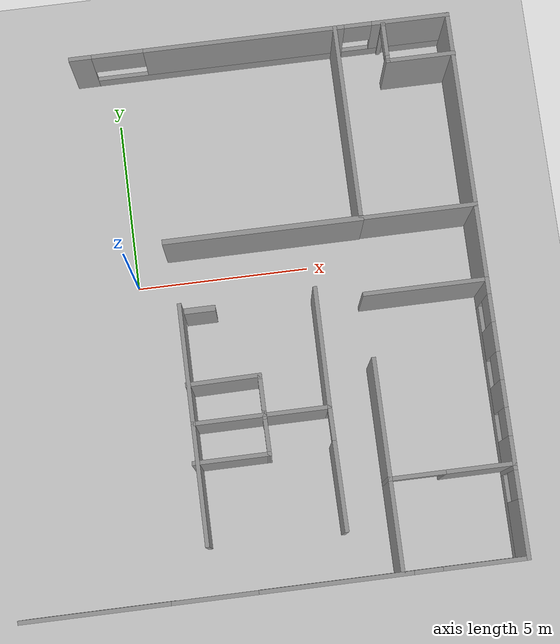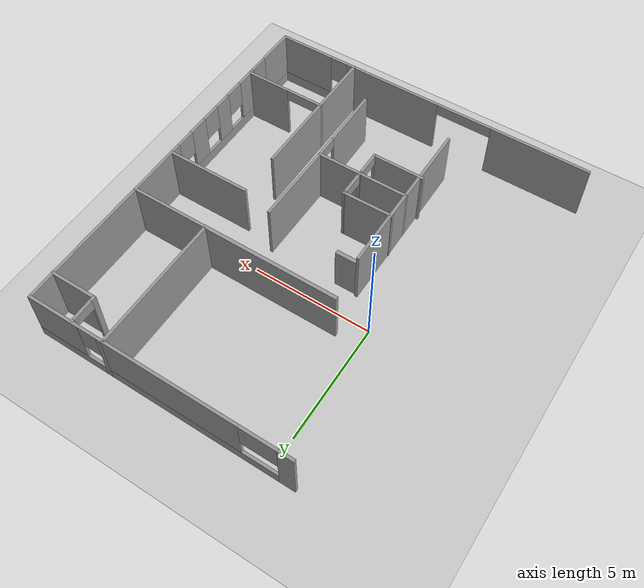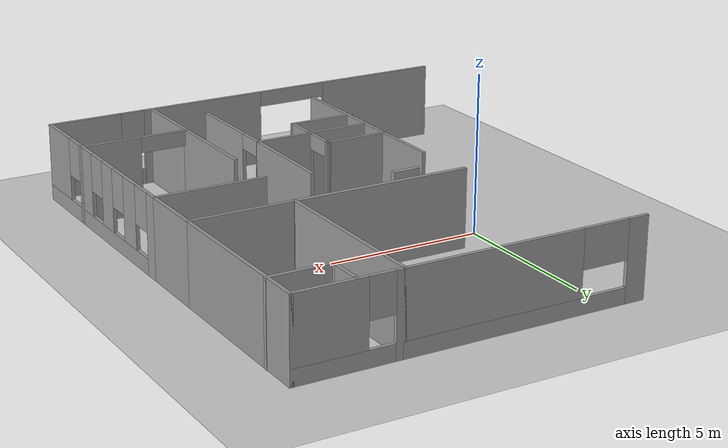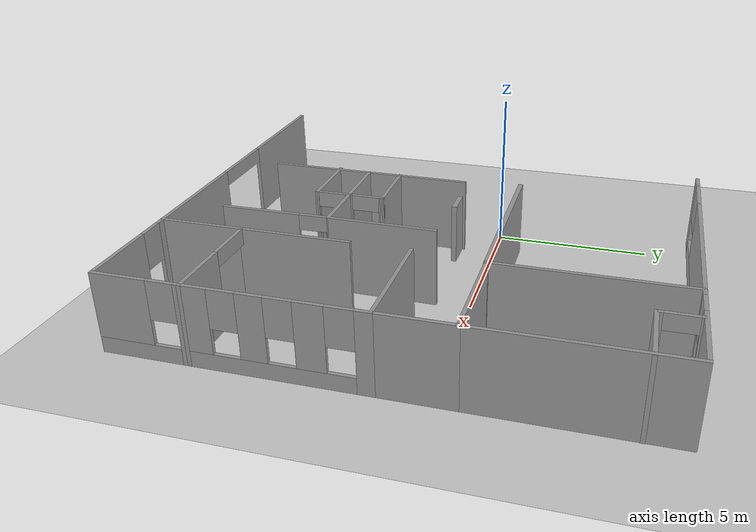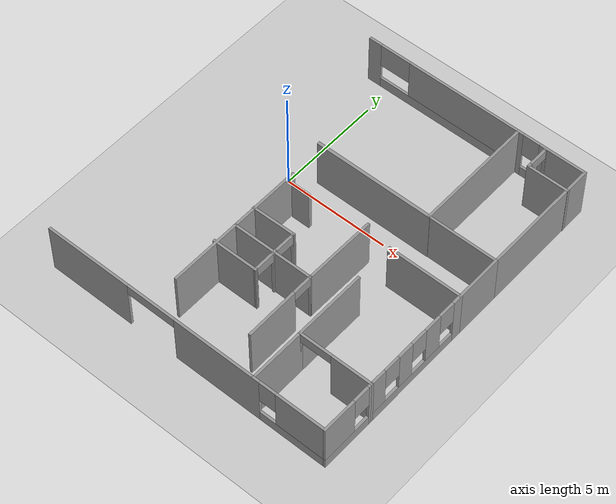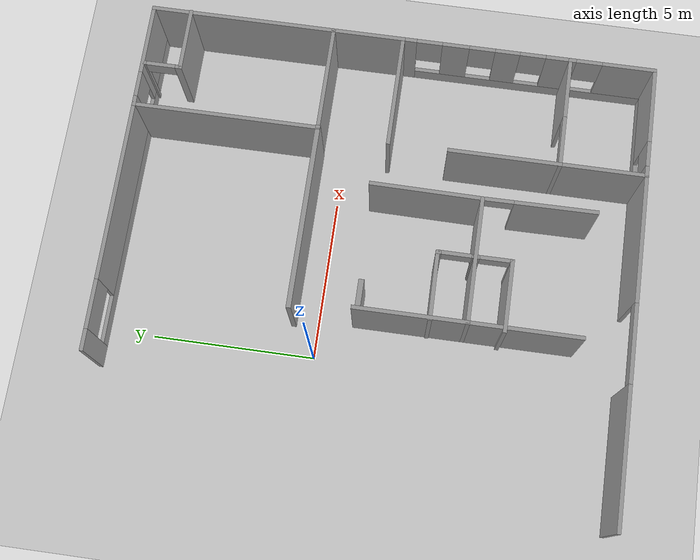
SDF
<sdf version="1.6">
 <world name="default">
  <model name="ground_plane">
   <static>1</static>
   <link name="link">
    <collision name="collision">
     <geometry><plane><normal>0 0 1</normal><size>100 100</size></plane></geometry>
     <surface><friction><ode><mu>100</mu><mu2>50</mu2></ode></friction></surface>
    </collision>
    <visual name="visual">
     <cast_shadows>0</cast_shadows>
     <geometry><plane><normal>0 0 1</normal><size>100 100</size></plane></geometry>
     <material>
      <script><uri>file://media/materials/scripts/gazebo.material</uri><name>Gazebo/Grey</name></script>
     </material>
    </visual>
   </link>
  </model>
  <model name="resthome">
   <pose>1.14114 -1.394 0 0 -0 0</pose>
   <link name="Door_12">
    <collision name="Door_12_Collision">
     <geometry><box><size>0.9 0.17 2</size></box></geometry>
     <pose>0 0 1 0 -0 0</pose>
    </collision>
    <visual name="Door_12_Visual">
     <pose>0 0 1 0 -0 0</pose>
     <geometry><box><size>0.9 0.17 2</size></box></geometry>
     <material>
      <script><uri>file://media/materials/scripts/gazebo.material</uri><name>Gazebo/Grey</name></script>
     </material>
    </visual>
    <pose>0.606126 0.200014 0 0 -0 0</pose>
   </link>
   <link name="Wall_100">
    <collision name="Wall_100_Collision">
     <geometry><box><size>3.46958 0.12 2.5</size></box></geometry>
     <pose>0 0 1.25 0 -0 0</pose>
    </collision>
    <visual name="Wall_100_Visual">
     <pose>0 0 1.25 0 -0 0</pose>
     <geometry><box><size>3.46958 0.12 2.5</size></box></geometry>
     <material>
      <script><uri>file://media/materials/scripts/gazebo.material</uri><name>Gazebo/Grey</name></script>
      <ambient>1 1 1 1</ambient>
     </material>
    </visual>
    <pose>0.064862 -1.375 0 0 -0 1.5708</pose>
   </link>
   <link name="Wall_104">
    <collision name="Wall_104_Collision">
     <geometry><box><size>3.47 0.12 2.5</size></box></geometry>
     <pose>0 0 1.25 0 -0 0</pose>
    </collision>
    <visual name="Wall_104_Visual">
     <pose>0 0 1.25 0 -0 0</pose>
     <geometry><box><size>3.47 0.12 2.5</size></box></geometry>
     <material>
      <script><uri>file://media/materials/scripts/gazebo.material</uri><name>Gazebo/Grey</name></script>
      <ambient>1 1 1 1</ambient>
     </material>
    </visual>
    <pose>0.064862 -4.725 0 0 0 -1.5708</pose>
   </link>
   <link name="Wall_106">
    <pose>3.89486 -4.76 0 0 0 -1.56202</pose>
    <visual name="Wall_106_Visual_0">
     <pose>-1.71993 0 1.25 0 -0 0</pose>
     <geometry><box><size>0.100265 0.12 2.5</size></box></geometry>
     <material>
      <script><uri>file://media/materials/scripts/gazebo.material</uri><name>Gazebo/Grey</name></script>
      <ambient>1 1 1 1</ambient>
     </material>
    </visual>
    <collision name="Wall_106_Collision_0">
     <geometry><box><size>0.100265 0.12 2.5</size></box></geometry>
     <pose>-1.71993 0 1.25 0 -0 0</pose>
    </collision>
    <visual name="Wall_106_Visual_1">
     <pose>0.500132 0 1.25 0 -0 0</pose>
     <geometry><box><size>2.53987 0.12 2.5</size></box></geometry>
     <material>
      <script><uri>file://media/materials/scripts/gazebo.material</uri><name>Gazebo/Grey</name></script>
      <ambient>1 1 1 1</ambient>
     </material>
    </visual>
    <collision name="Wall_106_Collision_1">
     <geometry><box><size>2.53987 0.12 2.5</size></box></geometry>
     <pose>0.500132 0 1.25 0 -0 0</pose>
    </collision>
    <visual name="Wall_106_Visual_2">
     <pose>-1.2198 0 2.25 0 -0 0</pose>
     <geometry><box><size>0.9 0.12 0.5</size></box></geometry>
     <material>
      <script><uri>file://media/materials/scripts/gazebo.material</uri><name>Gazebo/Grey</name></script>
      <ambient>1 1 1 1</ambient>
     </material>
    </visual>
    <collision name="Wall_106_Collision_2">
     <geometry><box><size>0.9 0.12 0.5</size></box></geometry>
     <pose>-1.2198 0 2.25 0 -0 0</pose>
    </collision>
   </link>
   <link name="Wall_149">
    <collision name="Wall_149_Collision">
     <geometry><box><size>2.02096 0.12 2.5</size></box></geometry>
     <pose>0 0 1.25 0 -0 0</pose>
    </collision>
    <visual name="Wall_149_Visual">
     <pose>0 0 1.25 0 -0 0</pose>
     <geometry><box><size>2.02096 0.12 2.5</size></box></geometry>
     <material>
      <script><uri>file://media/materials/scripts/gazebo.material</uri><name>Gazebo/Grey</name></script>
      <ambient>1 1 1 1</ambient>
     </material>
    </visual>
    <pose>7.80636 6.668 0 0 -0 3.14159</pose>
   </link>
   <link name="Wall_151">
    <pose>6.85586 7.218 0 0 -0 1.5708</pose>
    <visual name="Wall_151_Visual_0">
     <pose>-0.501734 0 1.25 0 -0 0</pose>
     <geometry><box><size>0.216362 0.12 2.5</size></box></geometry>
     <material>
      <script><uri>file://media/materials/scripts/gazebo.material</uri><name>Gazebo/Grey</name></script>
      <ambient>1 1 1 1</ambient>
     </material>
    </visual>
    <collision name="Wall_151_Collision_0">
     <geometry><box><size>0.216362 0.12 2.5</size></box></geometry>
     <pose>-0.501734 0 1.25 0 -0 0</pose>
    </collision>
    <visual name="Wall_151_Visual_1">
     <pose>0.558181 0 1.25 0 -0 0</pose>
     <geometry><box><size>0.103468 0.12 2.5</size></box></geometry>
     <material>
      <script><uri>file://media/materials/scripts/gazebo.material</uri><name>Gazebo/Grey</name></script>
      <ambient>1 1 1 1</ambient>
     </material>
    </visual>
    <collision name="Wall_151_Collision_1">
     <geometry><box><size>0.103468 0.12 2.5</size></box></geometry>
     <pose>0.558181 0 1.25 0 -0 0</pose>
    </collision>
    <visual name="Wall_151_Visual_2">
     <pose>0.056447 0 2.25 0 -0 0</pose>
     <geometry><box><size>0.9 0.12 0.5</size></box></geometry>
     <material>
      <script><uri>file://media/materials/scripts/gazebo.material</uri><name>Gazebo/Grey</name></script>
      <ambient>1 1 1 1</ambient>
     </material>
    </visual>
    <collision name="Wall_151_Collision_2">
     <geometry><box><size>0.9 0.12 0.5</size></box></geometry>
     <pose>0.056447 0 2.25 0 -0 0</pose>
    </collision>
   </link>
   <link name="Wall_159">
    <collision name="Wall_159_Collision">
     <geometry><box><size>2.14358 0.12 2.5</size></box></geometry>
     <pose>0 0 1.25 0 -0 0</pose>
    </collision>
    <visual name="Wall_159_Visual">
     <pose>0 0 1.25 0 -0 0</pose>
     <geometry><box><size>2.14358 0.12 2.5</size></box></geometry>
     <material>
      <script><uri>file://media/materials/scripts/gazebo.material</uri><name>Gazebo/Grey</name></script>
      <ambient>1 1 1 1</ambient>
     </material>
    </visual>
    <pose>1.04814 -1.9405 0 0 -0 0.011366</pose>
   </link>
   <link name="Wall_161">
    <pose>2.05986 -2.479 0 0 0 -1.5708</pose>
    <visual name="Wall_161_Visual_0">
     <pose>-0.52744 0 1.25 0 -0 0</pose>
     <geometry><box><size>0.164636 0.12 2.5</size></box></geometry>
     <material>
      <script><uri>file://media/materials/scripts/gazebo.material</uri><name>Gazebo/Grey</name></script>
      <ambient>1 1 1 1</ambient>
     </material>
    </visual>
    <collision name="Wall_161_Collision_0">
     <geometry><box><size>0.164636 0.12 2.5</size></box></geometry>
     <pose>-0.52744 0 1.25 0 -0 0</pose>
    </collision>
    <visual name="Wall_161_Visual_1">
     <pose>0.532318 0 1.25 0 -0 0</pose>
     <geometry><box><size>0.154879 0.12 2.5</size></box></geometry>
     <material>
      <script><uri>file://media/materials/scripts/gazebo.material</uri><name>Gazebo/Grey</name></script>
      <ambient>1 1 1 1</ambient>
     </material>
    </visual>
    <collision name="Wall_161_Collision_1">
     <geometry><box><size>0.154879 0.12 2.5</size></box></geometry>
     <pose>0.532318 0 1.25 0 -0 0</pose>
    </collision>
    <visual name="Wall_161_Visual_2">
     <pose>0.004878 0 2.25 0 -0 0</pose>
     <geometry><box><size>0.9 0.12 0.5</size></box></geometry>
     <material>
      <script><uri>file://media/materials/scripts/gazebo.material</uri><name>Gazebo/Grey</name></script>
      <ambient>1 1 1 1</ambient>
     </material>
    </visual>
    <collision name="Wall_161_Collision_2">
     <geometry><box><size>0.9 0.12 0.5</size></box></geometry>
     <pose>0.004878 0 2.25 0 -0 0</pose>
    </collision>
   </link>
   <link name="Wall_167">
    <collision name="Wall_167_Collision">
     <geometry><box><size>2.22 0.12 2.5</size></box></geometry>
     <pose>0 0 1.25 0 -0 0</pose>
    </collision>
    <visual name="Wall_167_Visual">
     <pose>0 0 1.25 0 -0 0</pose>
     <geometry><box><size>2.22 0.12 2.5</size></box></geometry>
     <material>
      <script><uri>file://media/materials/scripts/gazebo.material</uri><name>Gazebo/Grey</name></script>
      <ambient>1 1 1 1</ambient>
     </material>
    </visual>
    <pose>1.01586 -4.138 0 0 -0 0</pose>
   </link>
   <link name="Wall_170">
    <pose>2.06286 -3.5835 0 0 -0 1.57621</pose>
    <visual name="Wall_170_Visual_0">
     <pose>-0.5505 0 1.25 0 -0 0</pose>
     <geometry><box><size>0.128017 0.12 2.5</size></box></geometry>
     <material>
      <script><uri>file://media/materials/scripts/gazebo.material</uri><name>Gazebo/Grey</name></script>
      <ambient>1 1 1 1</ambient>
     </material>
    </visual>
    <collision name="Wall_170_Collision_0">
     <geometry><box><size>0.128017 0.12 2.5</size></box></geometry>
     <pose>-0.5505 0 1.25 0 -0 0</pose>
    </collision>
    <visual name="Wall_170_Visual_1">
     <pose>0.514009 0 1.25 0 -0 0</pose>
     <geometry><box><size>0.200999 0.12 2.5</size></box></geometry>
     <material>
      <script><uri>file://media/materials/scripts/gazebo.material</uri><name>Gazebo/Grey</name></script>
      <ambient>1 1 1 1</ambient>
     </material>
    </visual>
    <collision name="Wall_170_Collision_1">
     <geometry><box><size>0.200999 0.12 2.5</size></box></geometry>
     <pose>0.514009 0 1.25 0 -0 0</pose>
    </collision>
    <visual name="Wall_170_Visual_2">
     <pose>-0.036491 0 2.25 0 -0 0</pose>
     <geometry><box><size>0.9 0.12 0.5</size></box></geometry>
     <material>
      <script><uri>file://media/materials/scripts/gazebo.material</uri><name>Gazebo/Grey</name></script>
      <ambient>1 1 1 1</ambient>
     </material>
    </visual>
    <collision name="Wall_170_Collision_2">
     <geometry><box><size>0.9 0.12 0.5</size></box></geometry>
     <pose>-0.036491 0 2.25 0 -0 0</pose>
    </collision>
   </link>
   <link name="Wall_173">
    <collision name="Wall_173_Collision">
     <geometry><box><size>3.47 0.12 2.5</size></box></geometry>
     <pose>0 0 1.25 0 -0 0</pose>
    </collision>
    <visual name="Wall_173_Visual">
     <pose>0 0 1.25 0 -0 0</pose>
     <geometry><box><size>3.47 0.12 2.5</size></box></geometry>
     <material>
      <script><uri>file://media/materials/scripts/gazebo.material</uri><name>Gazebo/Grey</name></script>
      <ambient>1 1 1 1</ambient>
     </material>
    </visual>
    <pose>5.27686 -3.561 0 0 -0 1.5708</pose>
   </link>
   <link name="Wall_175">
    <collision name="Wall_175_Collision">
     <geometry><box><size>5.75 0.15 2.5</size></box></geometry>
     <pose>0 0 1.25 0 -0 0</pose>
    </collision>
    <visual name="Wall_175_Visual">
     <pose>0 0 1.25 0 -0 0</pose>
     <geometry><box><size>5.75 0.15 2.5</size></box></geometry>
     <material>
      <script><uri>file://media/materials/scripts/gazebo.material</uri><name>Gazebo/Grey</name></script>
      <ambient>1 1 1 1</ambient>
     </material>
    </visual>
    <pose>2.65986 2.159 0 0 -0 3.14159</pose>
   </link>
   <link name="Wall_47">
    <pose>1.61986 7.839 0 0 -0 0</pose>
    <visual name="Wall_47_Visual_0">
     <pose>-3.5722 0 1.25 0 -0 0</pose>
     <geometry><box><size>0.655594 0.12 2.5</size></box></geometry>
     <material>
      <script><uri>file://media/materials/scripts/gazebo.material</uri><name>Gazebo/Grey</name></script>
      <ambient>1 1 1 1</ambient>
     </material>
    </visual>
    <collision name="Wall_47_Collision_0">
     <geometry><box><size>0.655594 0.12 2.5</size></box></geometry>
     <pose>-3.5722 0 1.25 0 -0 0</pose>
    </collision>
    <visual name="Wall_47_Visual_1">
     <pose>0.327797 0 0.25 0 -0 0</pose>
     <geometry><box><size>7.14441 0.12 0.5</size></box></geometry>
     <material>
      <script><uri>file://media/materials/scripts/gazebo.material</uri><name>Gazebo/Grey</name></script>
      <ambient>1 1 1 1</ambient>
     </material>
    </visual>
    <collision name="Wall_47_Collision_1">
     <geometry><box><size>7.14441 0.12 0.5</size></box></geometry>
     <pose>0.327797 0 0.25 0 -0 0</pose>
    </collision>
    <visual name="Wall_47_Visual_2">
     <pose>1.0778 0 1.5 0 -0 0</pose>
     <geometry><box><size>5.64441 0.12 2</size></box></geometry>
     <material>
      <script><uri>file://media/materials/scripts/gazebo.material</uri><name>Gazebo/Grey</name></script>
      <ambient>1 1 1 1</ambient>
     </material>
    </visual>
    <collision name="Wall_47_Collision_2">
     <geometry><box><size>5.64441 0.12 2</size></box></geometry>
     <pose>1.0778 0 1.5 0 -0 0</pose>
    </collision>
    <visual name="Wall_47_Visual_3">
     <pose>-2.49441 0 1.9 0 -0 0</pose>
     <geometry><box><size>1.5 0.12 1.2</size></box></geometry>
     <material>
      <script><uri>file://media/materials/scripts/gazebo.material</uri><name>Gazebo/Grey</name></script>
      <ambient>1 1 1 1</ambient>
     </material>
    </visual>
    <collision name="Wall_47_Collision_3">
     <geometry><box><size>1.5 0.12 1.2</size></box></geometry>
     <pose>-2.49441 0 1.9 0 -0 0</pose>
    </collision>
   </link>
   <link name="Wall_49">
    <collision name="Wall_49_Collision">
     <geometry><box><size>5.8 0.12 2.5</size></box></geometry>
     <pose>0 0 1.25 0 -0 0</pose>
    </collision>
    <visual name="Wall_49_Visual">
     <pose>0 0 1.25 0 -0 0</pose>
     <geometry><box><size>5.8 0.12 2.5</size></box></geometry>
     <material>
      <script><uri>file://media/materials/scripts/gazebo.material</uri><name>Gazebo/Grey</name></script>
      <ambient>1 1 1 1</ambient>
     </material>
    </visual>
    <pose>5.45986 4.999 0 0 0 -1.5708</pose>
   </link>
   <link name="Wall_53">
    <pose>7.09986 7.839 0 0 -0 0</pose>
    <visual name="Wall_53_Visual_0">
     <pose>-1.53348 0 1.25 0 -0 0</pose>
     <geometry><box><size>0.333034 0.12 2.5</size></box></geometry>
     <material>
      <script><uri>file://media/materials/scripts/gazebo.material</uri><name>Gazebo/Grey</name></script>
      <ambient>1 1 1 1</ambient>
     </material>
    </visual>
    <collision name="Wall_53_Collision_0">
     <geometry><box><size>0.333034 0.12 2.5</size></box></geometry>
     <pose>-1.53348 0 1.25 0 -0 0</pose>
    </collision>
    <visual name="Wall_53_Visual_1">
     <pose>0.166517 0 0.25 0 -0 0</pose>
     <geometry><box><size>3.06697 0.12 0.5</size></box></geometry>
     <material>
      <script><uri>file://media/materials/scripts/gazebo.material</uri><name>Gazebo/Grey</name></script>
      <ambient>1 1 1 1</ambient>
     </material>
    </visual>
    <collision name="Wall_53_Collision_1">
     <geometry><box><size>3.06697 0.12 0.5</size></box></geometry>
     <pose>0.166517 0 0.25 0 -0 0</pose>
    </collision>
    <visual name="Wall_53_Visual_2">
     <pose>0.566517 0 1.5 0 -0 0</pose>
     <geometry><box><size>2.26697 0.12 2</size></box></geometry>
     <material>
      <script><uri>file://media/materials/scripts/gazebo.material</uri><name>Gazebo/Grey</name></script>
      <ambient>1 1 1 1</ambient>
     </material>
    </visual>
    <collision name="Wall_53_Collision_2">
     <geometry><box><size>2.26697 0.12 2</size></box></geometry>
     <pose>0.566517 0 1.5 0 -0 0</pose>
    </collision>
    <visual name="Wall_53_Visual_3">
     <pose>-0.966966 0 1.9 0 -0 0</pose>
     <geometry><box><size>0.8 0.12 1.2</size></box></geometry>
     <material>
      <script><uri>file://media/materials/scripts/gazebo.material</uri><name>Gazebo/Grey</name></script>
      <ambient>1 1 1 1</ambient>
     </material>
    </visual>
    <collision name="Wall_53_Collision_3">
     <geometry><box><size>0.8 0.12 1.2</size></box></geometry>
     <pose>-0.966966 0 1.9 0 -0 0</pose>
    </collision>
   </link>
   <link name="Wall_56">
    <collision name="Wall_56_Collision">
     <geometry><box><size>5.8 0.12 2.5</size></box></geometry>
     <pose>0 0 1.25 0 -0 0</pose>
    </collision>
    <visual name="Wall_56_Visual">
     <pose>0 0 1.25 0 -0 0</pose>
     <geometry><box><size>5.8 0.12 2.5</size></box></geometry>
     <material>
      <script><uri>file://media/materials/scripts/gazebo.material</uri><name>Gazebo/Grey</name></script>
      <ambient>1 1 1 1</ambient>
     </material>
    </visual>
    <pose>8.73986 4.999 0 0 0 -1.5708</pose>
   </link>
   <link name="Wall_58">
    <collision name="Wall_58_Collision">
     <geometry><box><size>3.4 0.12 2.5</size></box></geometry>
     <pose>0 0 1.25 0 -0 0</pose>
    </collision>
    <visual name="Wall_58_Visual">
     <pose>0 0 1.25 0 -0 0</pose>
     <geometry><box><size>3.4 0.12 2.5</size></box></geometry>
     <material>
      <script><uri>file://media/materials/scripts/gazebo.material</uri><name>Gazebo/Grey</name></script>
      <ambient>1 1 1 1</ambient>
     </material>
    </visual>
    <pose>7.09986 2.159 0 0 -0 3.14159</pose>
   </link>
   <link name="Wall_60">
    <collision name="Wall_60_Collision">
     <geometry><box><size>2.3 0.12 2.5</size></box></geometry>
     <pose>0 0 1.25 0 -0 0</pose>
    </collision>
    <visual name="Wall_60_Visual">
     <pose>0 0 1.25 0 -0 0</pose>
     <geometry><box><size>2.3 0.12 2.5</size></box></geometry>
     <material>
      <script><uri>file://media/materials/scripts/gazebo.material</uri><name>Gazebo/Grey</name></script>
      <ambient>1 1 1 1</ambient>
     </material>
    </visual>
    <pose>8.73986 1.069 0 0 0 -1.5708</pose>
   </link>
   <link name="Wall_62">
    <pose>8.73986 -2.6285 0 0 0 -1.5708</pose>
    <visual name="Wall_62_Visual_0">
     <pose>-2.42173 0 1.25 0 -0 0</pose>
     <geometry><box><size>0.491547 0.12 2.5</size></box></geometry>
     <material>
      <script><uri>file://media/materials/scripts/gazebo.material</uri><name>Gazebo/Grey</name></script>
      <ambient>1 1 1 1</ambient>
     </material>
    </visual>
    <collision name="Wall_62_Collision_0">
     <geometry><box><size>0.491547 0.12 2.5</size></box></geometry>
     <pose>-2.42173 0 1.25 0 -0 0</pose>
    </collision>
    <visual name="Wall_62_Visual_1">
     <pose>0.245773 0 0.25 0 -0 0</pose>
     <geometry><box><size>4.84345 0.12 0.5</size></box></geometry>
     <material>
      <script><uri>file://media/materials/scripts/gazebo.material</uri><name>Gazebo/Grey</name></script>
      <ambient>1 1 1 1</ambient>
     </material>
    </visual>
    <collision name="Wall_62_Collision_1">
     <geometry><box><size>4.84345 0.12 0.5</size></box></geometry>
     <pose>0.245773 0 0.25 0 -0 0</pose>
    </collision>
    <visual name="Wall_62_Visual_2">
     <pose>-0.95392 0 1.5 0 -0 0</pose>
     <geometry><box><size>0.844066 0.12 2</size></box></geometry>
     <material>
      <script><uri>file://media/materials/scripts/gazebo.material</uri><name>Gazebo/Grey</name></script>
      <ambient>1 1 1 1</ambient>
     </material>
    </visual>
    <collision name="Wall_62_Collision_2">
     <geometry><box><size>0.844066 0.12 2</size></box></geometry>
     <pose>-0.95392 0 1.5 0 -0 0</pose>
    </collision>
    <visual name="Wall_62_Visual_3">
     <pose>0.655166 0 1.5 0 -0 0</pose>
     <geometry><box><size>0.774106 0.12 2</size></box></geometry>
     <material>
      <script><uri>file://media/materials/scripts/gazebo.material</uri><name>Gazebo/Grey</name></script>
      <ambient>1 1 1 1</ambient>
     </material>
    </visual>
    <collision name="Wall_62_Collision_3">
     <geometry><box><size>0.774106 0.12 2</size></box></geometry>
     <pose>0.655166 0 1.5 0 -0 0</pose>
    </collision>
    <visual name="Wall_62_Visual_4">
     <pose>2.25486 0 1.5 0 -0 0</pose>
     <geometry><box><size>0.825282 0.12 2</size></box></geometry>
     <material>
      <script><uri>file://media/materials/scripts/gazebo.material</uri><name>Gazebo/Grey</name></script>
      <ambient>1 1 1 1</ambient>
     </material>
    </visual>
    <collision name="Wall_62_Collision_4">
     <geometry><box><size>0.825282 0.12 2</size></box></geometry>
     <pose>2.25486 0 1.5 0 -0 0</pose>
    </collision>
    <visual name="Wall_62_Visual_5">
     <pose>-1.77595 0 1.9 0 -0 0</pose>
     <geometry><box><size>0.8 0.12 1.2</size></box></geometry>
     <material>
      <script><uri>file://media/materials/scripts/gazebo.material</uri><name>Gazebo/Grey</name></script>
      <ambient>1 1 1 1</ambient>
     </material>
    </visual>
    <collision name="Wall_62_Collision_5">
     <geometry><box><size>0.8 0.12 1.2</size></box></geometry>
     <pose>-1.77595 0 1.9 0 -0 0</pose>
    </collision>
    <visual name="Wall_62_Visual_6">
     <pose>-0.131887 0 1.9 0 -0 0</pose>
     <geometry><box><size>0.8 0.12 1.2</size></box></geometry>
     <material>
      <script><uri>file://media/materials/scripts/gazebo.material</uri><name>Gazebo/Grey</name></script>
      <ambient>1 1 1 1</ambient>
     </material>
    </visual>
    <collision name="Wall_62_Collision_6">
     <geometry><box><size>0.8 0.12 1.2</size></box></geometry>
     <pose>-0.131887 0 1.9 0 -0 0</pose>
    </collision>
    <visual name="Wall_62_Visual_7">
     <pose>1.44222 0 1.9 0 -0 0</pose>
     <geometry><box><size>0.8 0.12 1.2</size></box></geometry>
     <material>
      <script><uri>file://media/materials/scripts/gazebo.material</uri><name>Gazebo/Grey</name></script>
      <ambient>1 1 1 1</ambient>
     </material>
    </visual>
    <collision name="Wall_62_Collision_7">
     <geometry><box><size>0.8 0.12 1.2</size></box></geometry>
     <pose>1.44222 0 1.9 0 -0 0</pose>
    </collision>
   </link>
   <link name="Wall_64">
    <pose>7.00836 -5.236 0 0 -0 3.14159</pose>
    <visual name="Wall_64_Visual_0">
     <pose>-0.808418 0 1.25 0 -0 0</pose>
     <geometry><box><size>1.96629 0.12 2.5</size></box></geometry>
     <material>
      <script><uri>file://media/materials/scripts/gazebo.material</uri><name>Gazebo/Grey</name></script>
      <ambient>1 1 1 1</ambient>
     </material>
    </visual>
    <collision name="Wall_64_Collision_0">
     <geometry><box><size>1.96629 0.12 2.5</size></box></geometry>
     <pose>-0.808418 0 1.25 0 -0 0</pose>
    </collision>
    <visual name="Wall_64_Visual_1">
     <pose>1.73315 0 1.25 0 -0 0</pose>
     <geometry><box><size>0.116836 0.12 2.5</size></box></geometry>
     <material>
      <script><uri>file://media/materials/scripts/gazebo.material</uri><name>Gazebo/Grey</name></script>
      <ambient>1 1 1 1</ambient>
     </material>
    </visual>
    <collision name="Wall_64_Collision_1">
     <geometry><box><size>0.116836 0.12 2.5</size></box></geometry>
     <pose>1.73315 0 1.25 0 -0 0</pose>
    </collision>
    <visual name="Wall_64_Visual_2">
     <pose>0.924729 0 2.25 0 -0 0</pose>
     <geometry><box><size>1.5 0.12 0.5</size></box></geometry>
     <material>
      <script><uri>file://media/materials/scripts/gazebo.material</uri><name>Gazebo/Grey</name></script>
      <ambient>1 1 1 1</ambient>
     </material>
    </visual>
    <collision name="Wall_64_Collision_2">
     <geometry><box><size>1.5 0.12 0.5</size></box></geometry>
     <pose>0.924729 0 2.25 0 -0 0</pose>
    </collision>
   </link>
   <link name="Wall_68">
    <collision name="Wall_68_Collision">
     <geometry><box><size>3.583 0.12 2.5</size></box></geometry>
     <pose>0 0 1.25 0 -0 0</pose>
    </collision>
    <visual name="Wall_68_Visual">
     <pose>0 0 1.25 0 -0 0</pose>
     <geometry><box><size>3.583 0.12 2.5</size></box></geometry>
     <material>
      <script><uri>file://media/materials/scripts/gazebo.material</uri><name>Gazebo/Grey</name></script>
      <ambient>1 1 1 1</ambient>
     </material>
    </visual>
    <pose>7.00836 -0.021 0 0 -0 0</pose>
   </link>
   <link name="Wall_72">
    <pose>1.70386 -7.839 0 0 -0 0</pose>
    <visual name="Wall_72_Visual_0">
     <pose>-4.88715 0 1.25 0 -0 0</pose>
     <geometry><box><size>4.19571 0.12 2.5</size></box></geometry>
     <material>
      <script><uri>file://media/materials/scripts/gazebo.material</uri><name>Gazebo/Grey</name></script>
      <ambient>1 1 1 1</ambient>
     </material>
    </visual>
    <collision name="Wall_72_Collision_0">
     <geometry><box><size>4.19571 0.12 2.5</size></box></geometry>
     <pose>-4.88715 0 1.25 0 -0 0</pose>
    </collision>
    <visual name="Wall_72_Visual_1">
     <pose>1.7442 0 1.25 0 -0 0</pose>
     <geometry><box><size>4.26699 0.12 2.5</size></box></geometry>
     <material>
      <script><uri>file://media/materials/scripts/gazebo.material</uri><name>Gazebo/Grey</name></script>
      <ambient>1 1 1 1</ambient>
     </material>
    </visual>
    <collision name="Wall_72_Collision_1">
     <geometry><box><size>4.26699 0.12 2.5</size></box></geometry>
     <pose>1.7442 0 1.25 0 -0 0</pose>
    </collision>
    <visual name="Wall_72_Visual_2">
     <pose>5.43135 0 0.25 0 -0 0</pose>
     <geometry><box><size>3.1073 0.12 0.5</size></box></geometry>
     <material>
      <script><uri>file://media/materials/scripts/gazebo.material</uri><name>Gazebo/Grey</name></script>
      <ambient>1 1 1 1</ambient>
     </material>
    </visual>
    <collision name="Wall_72_Collision_2">
     <geometry><box><size>3.1073 0.12 0.5</size></box></geometry>
     <pose>5.43135 0 0.25 0 -0 0</pose>
    </collision>
    <visual name="Wall_72_Visual_3">
     <pose>5.83135 0 1.5 0 -0 0</pose>
     <geometry><box><size>2.3073 0.12 2</size></box></geometry>
     <material>
      <script><uri>file://media/materials/scripts/gazebo.material</uri><name>Gazebo/Grey</name></script>
      <ambient>1 1 1 1</ambient>
     </material>
    </visual>
    <collision name="Wall_72_Collision_3">
     <geometry><box><size>2.3073 0.12 2</size></box></geometry>
     <pose>5.83135 0 1.5 0 -0 0</pose>
    </collision>
    <visual name="Wall_72_Visual_4">
     <pose>4.2777 0 1.9 0 -0 0</pose>
     <geometry><box><size>0.8 0.12 1.2</size></box></geometry>
     <material>
      <script><uri>file://media/materials/scripts/gazebo.material</uri><name>Gazebo/Grey</name></script>
      <ambient>1 1 1 1</ambient>
     </material>
    </visual>
    <collision name="Wall_72_Collision_4">
     <geometry><box><size>0.8 0.12 1.2</size></box></geometry>
     <pose>4.2777 0 1.9 0 -0 0</pose>
    </collision>
    <visual name="Wall_72_Visual_5">
     <pose>-1.58929 0 2.25 0 -0 0</pose>
     <geometry><box><size>2.4 0.12 0.5</size></box></geometry>
     <material>
      <script><uri>file://media/materials/scripts/gazebo.material</uri><name>Gazebo/Grey</name></script>
      <ambient>1 1 1 1</ambient>
     </material>
    </visual>
    <collision name="Wall_72_Collision_5">
     <geometry><box><size>2.4 0.12 0.5</size></box></geometry>
     <pose>-1.58929 0 2.25 0 -0 0</pose>
    </collision>
   </link>
   <link name="Wall_75">
    <pose>8.73986 -6.536 0 0 0 -1.5708</pose>
    <visual name="Wall_75_Visual_0">
     <pose>-1.23814 0 1.25 0 -0 0</pose>
     <geometry><box><size>0.243725 0.12 2.5</size></box></geometry>
     <material>
      <script><uri>file://media/materials/scripts/gazebo.material</uri><name>Gazebo/Grey</name></script>
      <ambient>1 1 1 1</ambient>
     </material>
    </visual>
    <collision name="Wall_75_Collision_0">
     <geometry><box><size>0.243725 0.12 2.5</size></box></geometry>
     <pose>-1.23814 0 1.25 0 -0 0</pose>
    </collision>
    <visual name="Wall_75_Visual_1">
     <pose>0.121862 0 0.25 0 -0 0</pose>
     <geometry><box><size>2.47627 0.12 0.5</size></box></geometry>
     <material>
      <script><uri>file://media/materials/scripts/gazebo.material</uri><name>Gazebo/Grey</name></script>
      <ambient>1 1 1 1</ambient>
     </material>
    </visual>
    <collision name="Wall_75_Collision_1">
     <geometry><box><size>2.47627 0.12 0.5</size></box></geometry>
     <pose>0.121862 0 0.25 0 -0 0</pose>
    </collision>
    <visual name="Wall_75_Visual_2">
     <pose>0.521862 0 1.5 0 -0 0</pose>
     <geometry><box><size>1.67627 0.12 2</size></box></geometry>
     <material>
      <script><uri>file://media/materials/scripts/gazebo.material</uri><name>Gazebo/Grey</name></script>
      <ambient>1 1 1 1</ambient>
     </material>
    </visual>
    <collision name="Wall_75_Collision_2">
     <geometry><box><size>1.67627 0.12 2</size></box></geometry>
     <pose>0.521862 0 1.5 0 -0 0</pose>
    </collision>
    <visual name="Wall_75_Visual_3">
     <pose>-0.716275 0 1.9 0 -0 0</pose>
     <geometry><box><size>0.8 0.12 1.2</size></box></geometry>
     <material>
      <script><uri>file://media/materials/scripts/gazebo.material</uri><name>Gazebo/Grey</name></script>
      <ambient>1 1 1 1</ambient>
     </material>
    </visual>
    <collision name="Wall_75_Collision_3">
     <geometry><box><size>0.8 0.12 1.2</size></box></geometry>
     <pose>-0.716275 0 1.9 0 -0 0</pose>
    </collision>
   </link>
   <link name="Wall_77">
    <collision name="Wall_77_Collision">
     <geometry><box><size>2.72 0.12 2.5</size></box></geometry>
     <pose>0 0 1.25 0 -0 0</pose>
    </collision>
    <visual name="Wall_77_Visual">
     <pose>0 0 1.25 0 -0 0</pose>
     <geometry><box><size>2.72 0.12 2.5</size></box></geometry>
     <material>
      <script><uri>file://media/materials/scripts/gazebo.material</uri><name>Gazebo/Grey</name></script>
      <ambient>1 1 1 1</ambient>
     </material>
    </visual>
    <pose>5.27686 -6.536 0 0 0 -1.5708</pose>
   </link>
   <link name="Wall_92">
    <collision name="Wall_92_Collision">
     <geometry><box><size>3.47997 0.12 2.5</size></box></geometry>
     <pose>0 0 1.25 0 -0 0</pose>
    </collision>
    <visual name="Wall_92_Visual">
     <pose>0 0 1.25 0 -0 0</pose>
     <geometry><box><size>3.47997 0.12 2.5</size></box></geometry>
     <material>
      <script><uri>file://media/materials/scripts/gazebo.material</uri><name>Gazebo/Grey</name></script>
      <ambient>1 1 1 1</ambient>
     </material>
    </visual>
    <pose>3.89486 -1.3705 0 0 0 -1.57973</pose>
   </link>
   <link name="Wall_98">
    <collision name="Wall_98_Collision">
     <geometry><box><size>3.935 0.12 2.5</size></box></geometry>
     <pose>0 0 1.25 0 -0 0</pose>
    </collision>
    <visual name="Wall_98_Visual">
     <pose>0 0 1.25 0 -0 0</pose>
     <geometry><box><size>3.935 0.12 2.5</size></box></geometry>
     <material>
      <script><uri>file://media/materials/scripts/gazebo.material</uri><name>Gazebo/Grey</name></script>
      <ambient>1 1 1 1</ambient>
     </material>
    </visual>
    <pose>1.97236 -3.05 0 0 -0 3.14159</pose>
   </link>
   <static>1</static>
  </model>
 </world>
</sdf>
